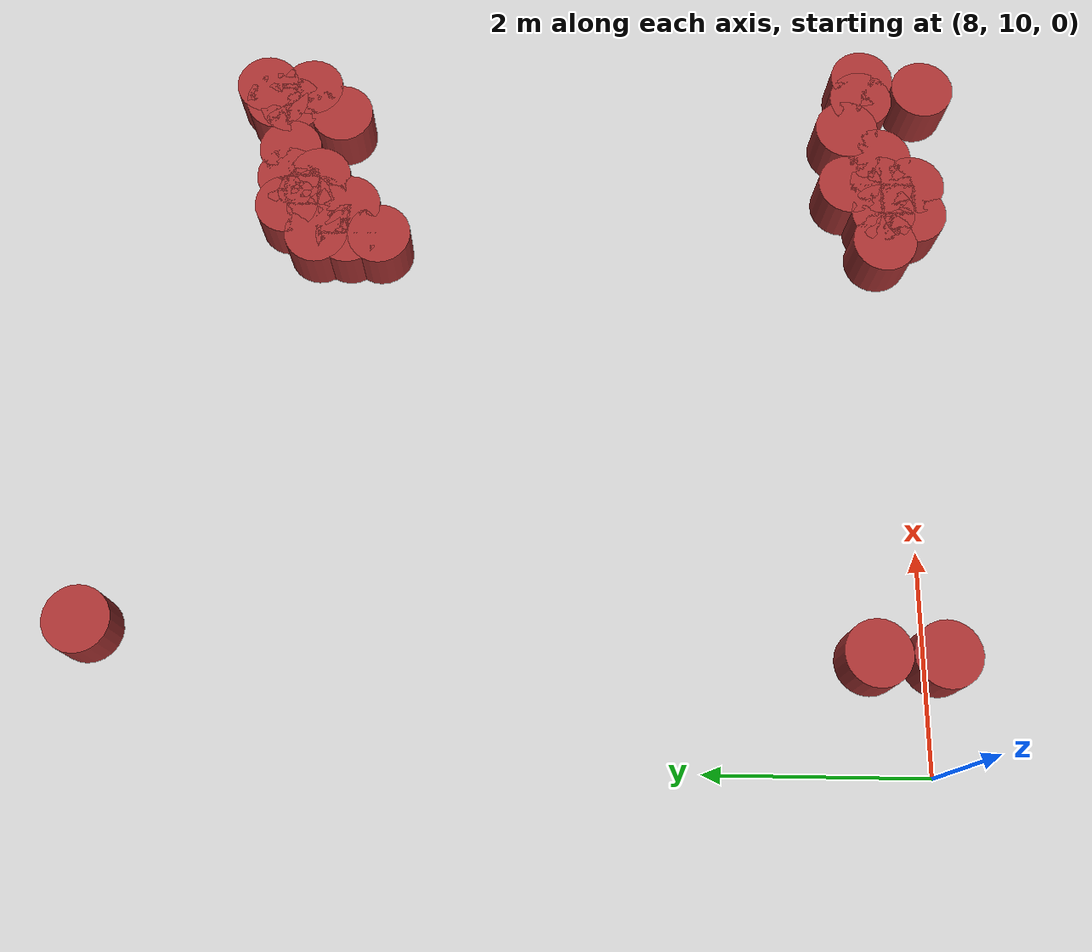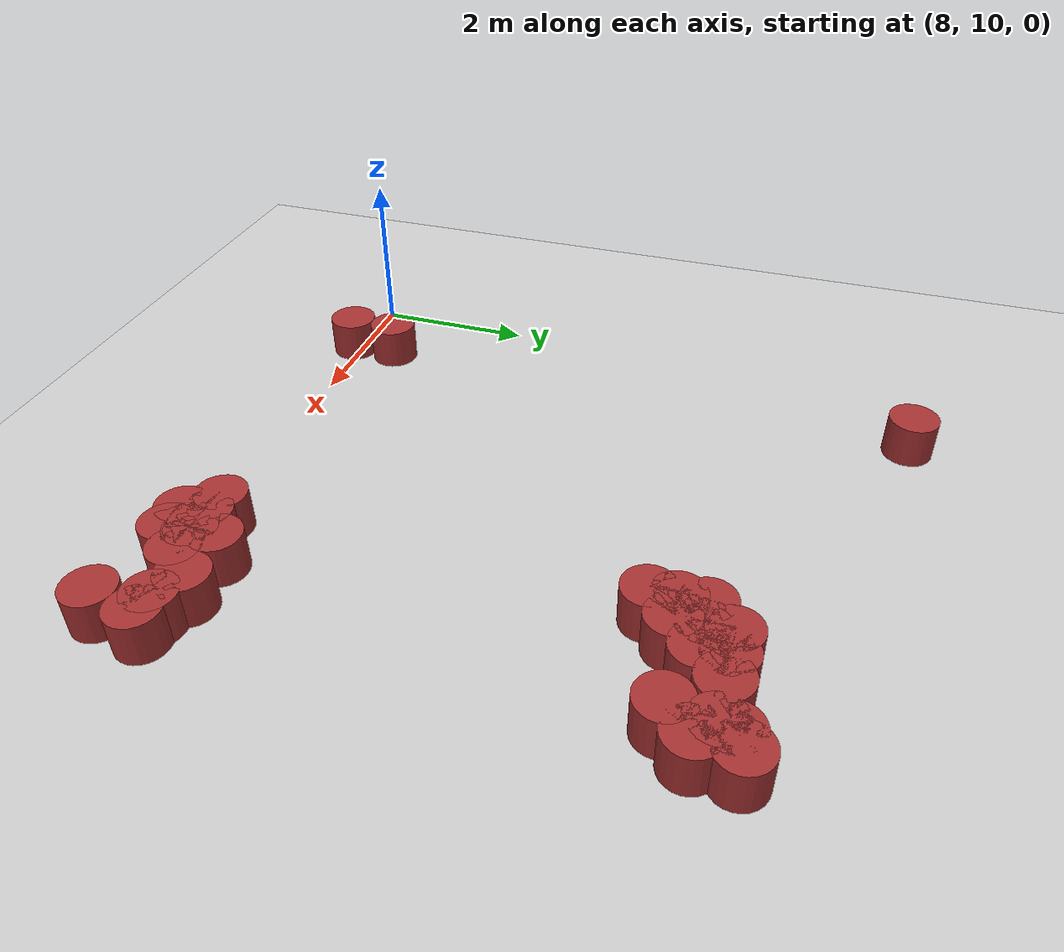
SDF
<sdf version="1.6">
 <world name="default">
  <model name="ground_plane">
   <static>1</static>
   <link name="link">
    <collision name="collision">
     <geometry><plane><normal>0 0 1</normal><size>100 100</size></plane></geometry>
     <surface><friction><ode><mu>100</mu><mu2>50</mu2></ode></friction></surface>
    </collision>
    <visual name="visual">
     <cast_shadows>0</cast_shadows>
     <geometry><plane><normal>0 0 1</normal><size>100 100</size></plane></geometry>
     <material>
      <script><uri>file://media/materials/scripts/gazebo.material</uri><name>Gazebo/Grey</name></script>
     </material>
    </visual>
   </link>
  </model>
  <model name="unit_cylinder_98">
   <static>1</static>
   <pose>9 9.9 0 0 -0 0</pose>
   <link name="link">
    <inertial>
     <mass>1</mass>
     <inertia><ixx>0.145833</ixx><ixy>0</ixy><ixz>0</ixz><iyy>0.145833</iyy><iyz>0</iyz><izz>0.125</izz></inertia>
    </inertial>
    <collision name="collision">
     <geometry><cylinder><radius>0.3</radius><length>1</length></cylinder></geometry>
    </collision>
    <visual name="visual">
     <geometry><cylinder><radius>0.3</radius><length>1</length></cylinder></geometry>
     <material><ambient>0.648 0.192 0.192 1</ambient><diffuse>0.648 0.192 0.192 1</diffuse></material>
     <material>
      <script><name>Gazebo/Grey</name><uri>file://media/materials/scripts/gazebo.material</uri></script>
     </material>
    </visual>
   </link>
  </model>
  <model name="unit_cylinder_99">
   <static>1</static>
   <pose>9 10.5 0 0 -0 0</pose>
   <link name="link">
    <inertial>
     <mass>1</mass>
     <inertia><ixx>0.145833</ixx><ixy>0</ixy><ixz>0</ixz><iyy>0.145833</iyy><iyz>0</iyz><izz>0.125</izz></inertia>
    </inertial>
    <collision name="collision">
     <geometry><cylinder><radius>0.3</radius><length>1</length></cylinder></geometry>
    </collision>
    <visual name="visual">
     <geometry><cylinder><radius>0.3</radius><length>1</length></cylinder></geometry>
     <material><ambient>0.648 0.192 0.192 1</ambient><diffuse>0.648 0.192 0.192 1</diffuse></material>
     <material>
      <script><name>Gazebo/Grey</name><uri>file://media/materials/scripts/gazebo.material</uri></script>
     </material>
    </visual>
   </link>
  </model>
  <model name="unit_cylinder_113">
   <static>1</static>
   <pose>9.17546 17.4355 0 0 -0 0</pose>
   <link name="link">
    <inertial>
     <mass>1</mass>
     <inertia><ixx>0.145833</ixx><ixy>0</ixy><ixz>0</ixz><iyy>0.145833</iyy><iyz>0</iyz><izz>0.125</izz></inertia>
    </inertial>
    <collision name="collision">
     <geometry><cylinder><radius>0.3</radius><length>1</length></cylinder></geometry>
    </collision>
    <visual name="visual">
     <geometry><cylinder><radius>0.3</radius><length>1</length></cylinder></geometry>
     <material><ambient>0.648 0.192 0.192 1</ambient><diffuse>0.648 0.192 0.192 1</diffuse></material>
     <material>
      <script><name>Gazebo/Grey</name><uri>file://media/materials/scripts/gazebo.material</uri></script>
     </material>
    </visual>
   </link>
  </model>
  <model name="unit_cylinder_128">
   <static>1</static>
   <pose>12.9 10.2 0 0 -0 0</pose>
   <link name="link">
    <inertial>
     <mass>1</mass>
     <inertia><ixx>0.145833</ixx><ixy>0</ixy><ixz>0</ixz><iyy>0.145833</iyy><iyz>0</iyz><izz>0.125</izz></inertia>
    </inertial>
    <collision name="collision">
     <geometry><cylinder><radius>0.3</radius><length>1</length></cylinder></geometry>
    </collision>
    <visual name="visual">
     <geometry><cylinder><radius>0.3</radius><length>1</length></cylinder></geometry>
     <material><ambient>0.648 0.192 0.192 1</ambient><diffuse>0.648 0.192 0.192 1</diffuse></material>
     <material>
      <script><name>Gazebo/Grey</name><uri>file://media/materials/scripts/gazebo.material</uri></script>
     </material>
    </visual>
   </link>
  </model>
  <model name="unit_cylinder_129">
   <static>1</static>
   <pose>12.9 15 0 0 -0 0</pose>
   <link name="link">
    <inertial>
     <mass>1</mass>
     <inertia><ixx>0.145833</ixx><ixy>0</ixy><ixz>0</ixz><iyy>0.145833</iyy><iyz>0</iyz><izz>0.125</izz></inertia>
    </inertial>
    <collision name="collision">
     <geometry><cylinder><radius>0.3</radius><length>1</length></cylinder></geometry>
    </collision>
    <visual name="visual">
     <geometry><cylinder><radius>0.3</radius><length>1</length></cylinder></geometry>
     <material><ambient>0.648 0.192 0.192 1</ambient><diffuse>0.648 0.192 0.192 1</diffuse></material>
     <material>
      <script><name>Gazebo/Grey</name><uri>file://media/materials/scripts/gazebo.material</uri></script>
     </material>
    </visual>
   </link>
  </model>
  <model name="unit_cylinder_130">
   <static>1</static>
   <pose>12.9 15.3 0 0 -0 0</pose>
   <link name="link">
    <inertial>
     <mass>1</mass>
     <inertia><ixx>0.145833</ixx><ixy>0</ixy><ixz>0</ixz><iyy>0.145833</iyy><iyz>0</iyz><izz>0.125</izz></inertia>
    </inertial>
    <collision name="collision">
     <geometry><cylinder><radius>0.3</radius><length>1</length></cylinder></geometry>
    </collision>
    <visual name="visual">
     <geometry><cylinder><radius>0.3</radius><length>1</length></cylinder></geometry>
     <material><ambient>0.648 0.192 0.192 1</ambient><diffuse>0.648 0.192 0.192 1</diffuse></material>
     <material>
      <script><name>Gazebo/Grey</name><uri>file://media/materials/scripts/gazebo.material</uri></script>
     </material>
    </visual>
   </link>
  </model>
  <model name="unit_cylinder_131">
   <static>1</static>
   <pose>12.9 15.6 0 0 -0 0</pose>
   <link name="link">
    <inertial>
     <mass>1</mass>
     <inertia><ixx>0.145833</ixx><ixy>0</ixy><ixz>0</ixz><iyy>0.145833</iyy><iyz>0</iyz><izz>0.125</izz></inertia>
    </inertial>
    <collision name="collision">
     <geometry><cylinder><radius>0.3</radius><length>1</length></cylinder></geometry>
    </collision>
    <visual name="visual">
     <geometry><cylinder><radius>0.3</radius><length>1</length></cylinder></geometry>
     <material><ambient>0.648 0.192 0.192 1</ambient><diffuse>0.648 0.192 0.192 1</diffuse></material>
     <material>
      <script><name>Gazebo/Grey</name><uri>file://media/materials/scripts/gazebo.material</uri></script>
     </material>
    </visual>
   </link>
  </model>
  <model name="unit_cylinder_132">
   <static>1</static>
   <pose>13.2 9.9 0 0 -0 0</pose>
   <link name="link">
    <inertial>
     <mass>1</mass>
     <inertia><ixx>0.145833</ixx><ixy>0</ixy><ixz>0</ixz><iyy>0.145833</iyy><iyz>0</iyz><izz>0.125</izz></inertia>
    </inertial>
    <collision name="collision">
     <geometry><cylinder><radius>0.3</radius><length>1</length></cylinder></geometry>
    </collision>
    <visual name="visual">
     <geometry><cylinder><radius>0.3</radius><length>1</length></cylinder></geometry>
     <material><ambient>0.648 0.192 0.192 1</ambient><diffuse>0.648 0.192 0.192 1</diffuse></material>
     <material>
      <script><name>Gazebo/Grey</name><uri>file://media/materials/scripts/gazebo.material</uri></script>
     </material>
    </visual>
   </link>
  </model>
  <model name="unit_cylinder_133">
   <static>1</static>
   <pose>13.2 10.2 0 0 -0 0</pose>
   <link name="link">
    <inertial>
     <mass>1</mass>
     <inertia><ixx>0.145833</ixx><ixy>0</ixy><ixz>0</ixz><iyy>0.145833</iyy><iyz>0</iyz><izz>0.125</izz></inertia>
    </inertial>
    <collision name="collision">
     <geometry><cylinder><radius>0.3</radius><length>1</length></cylinder></geometry>
    </collision>
    <visual name="visual">
     <geometry><cylinder><radius>0.3</radius><length>1</length></cylinder></geometry>
     <material><ambient>0.648 0.192 0.192 1</ambient><diffuse>0.648 0.192 0.192 1</diffuse></material>
     <material>
      <script><name>Gazebo/Grey</name><uri>file://media/materials/scripts/gazebo.material</uri></script>
     </material>
    </visual>
   </link>
  </model>
  <model name="unit_cylinder_134">
   <static>1</static>
   <pose>13.2 15.3 0 0 -0 0</pose>
   <link name="link">
    <inertial>
     <mass>1</mass>
     <inertia><ixx>0.145833</ixx><ixy>0</ixy><ixz>0</ixz><iyy>0.145833</iyy><iyz>0</iyz><izz>0.125</izz></inertia>
    </inertial>
    <collision name="collision">
     <geometry><cylinder><radius>0.3</radius><length>1</length></cylinder></geometry>
    </collision>
    <visual name="visual">
     <geometry><cylinder><radius>0.3</radius><length>1</length></cylinder></geometry>
     <material><ambient>0.648 0.192 0.192 1</ambient><diffuse>0.648 0.192 0.192 1</diffuse></material>
     <material>
      <script><name>Gazebo/Grey</name><uri>file://media/materials/scripts/gazebo.material</uri></script>
     </material>
    </visual>
   </link>
  </model>
  <model name="unit_cylinder_135">
   <static>1</static>
   <pose>13.2 15.6 0 0 -0 0</pose>
   <link name="link">
    <inertial>
     <mass>1</mass>
     <inertia><ixx>0.145833</ixx><ixy>0</ixy><ixz>0</ixz><iyy>0.145833</iyy><iyz>0</iyz><izz>0.125</izz></inertia>
    </inertial>
    <collision name="collision">
     <geometry><cylinder><radius>0.3</radius><length>1</length></cylinder></geometry>
    </collision>
    <visual name="visual">
     <geometry><cylinder><radius>0.3</radius><length>1</length></cylinder></geometry>
     <material><ambient>0.648 0.192 0.192 1</ambient><diffuse>0.648 0.192 0.192 1</diffuse></material>
     <material>
      <script><name>Gazebo/Grey</name><uri>file://media/materials/scripts/gazebo.material</uri></script>
     </material>
    </visual>
   </link>
  </model>
  <model name="unit_cylinder_136">
   <static>1</static>
   <pose>13.2 15.9 0 0 -0 0</pose>
   <link name="link">
    <inertial>
     <mass>1</mass>
     <inertia><ixx>0.145833</ixx><ixy>0</ixy><ixz>0</ixz><iyy>0.145833</iyy><iyz>0</iyz><izz>0.125</izz></inertia>
    </inertial>
    <collision name="collision">
     <geometry><cylinder><radius>0.3</radius><length>1</length></cylinder></geometry>
    </collision>
    <visual name="visual">
     <geometry><cylinder><radius>0.3</radius><length>1</length></cylinder></geometry>
     <material><ambient>0.648 0.192 0.192 1</ambient><diffuse>0.648 0.192 0.192 1</diffuse></material>
     <material>
      <script><name>Gazebo/Grey</name><uri>file://media/materials/scripts/gazebo.material</uri></script>
     </material>
    </visual>
   </link>
  </model>
  <model name="unit_cylinder_137">
   <static>1</static>
   <pose>13.5 9.9 0 0 -0 0</pose>
   <link name="link">
    <inertial>
     <mass>1</mass>
     <inertia><ixx>0.145833</ixx><ixy>0</ixy><ixz>0</ixz><iyy>0.145833</iyy><iyz>0</iyz><izz>0.125</izz></inertia>
    </inertial>
    <collision name="collision">
     <geometry><cylinder><radius>0.3</radius><length>1</length></cylinder></geometry>
    </collision>
    <visual name="visual">
     <geometry><cylinder><radius>0.3</radius><length>1</length></cylinder></geometry>
     <material><ambient>0.648 0.192 0.192 1</ambient><diffuse>0.648 0.192 0.192 1</diffuse></material>
     <material>
      <script><name>Gazebo/Grey</name><uri>file://media/materials/scripts/gazebo.material</uri></script>
     </material>
    </visual>
   </link>
  </model>
  <model name="unit_cylinder_138">
   <static>1</static>
   <pose>13.5 10.2 0 0 -0 0</pose>
   <link name="link">
    <inertial>
     <mass>1</mass>
     <inertia><ixx>0.145833</ixx><ixy>0</ixy><ixz>0</ixz><iyy>0.145833</iyy><iyz>0</iyz><izz>0.125</izz></inertia>
    </inertial>
    <collision name="collision">
     <geometry><cylinder><radius>0.3</radius><length>1</length></cylinder></geometry>
    </collision>
    <visual name="visual">
     <geometry><cylinder><radius>0.3</radius><length>1</length></cylinder></geometry>
     <material><ambient>0.648 0.192 0.192 1</ambient><diffuse>0.648 0.192 0.192 1</diffuse></material>
     <material>
      <script><name>Gazebo/Grey</name><uri>file://media/materials/scripts/gazebo.material</uri></script>
     </material>
    </visual>
   </link>
  </model>
  <model name="unit_cylinder_139">
   <static>1</static>
   <pose>13.5 10.5 0 0 -0 0</pose>
   <link name="link">
    <inertial>
     <mass>1</mass>
     <inertia><ixx>0.145833</ixx><ixy>0</ixy><ixz>0</ixz><iyy>0.145833</iyy><iyz>0</iyz><izz>0.125</izz></inertia>
    </inertial>
    <collision name="collision">
     <geometry><cylinder><radius>0.3</radius><length>1</length></cylinder></geometry>
    </collision>
    <visual name="visual">
     <geometry><cylinder><radius>0.3</radius><length>1</length></cylinder></geometry>
     <material><ambient>0.648 0.192 0.192 1</ambient><diffuse>0.648 0.192 0.192 1</diffuse></material>
     <material>
      <script><name>Gazebo/Grey</name><uri>file://media/materials/scripts/gazebo.material</uri></script>
     </material>
    </visual>
   </link>
  </model>
  <model name="unit_cylinder_140">
   <static>1</static>
   <pose>13.5 15.6 0 0 -0 0</pose>
   <link name="link">
    <inertial>
     <mass>1</mass>
     <inertia><ixx>0.145833</ixx><ixy>0</ixy><ixz>0</ixz><iyy>0.145833</iyy><iyz>0</iyz><izz>0.125</izz></inertia>
    </inertial>
    <collision name="collision">
     <geometry><cylinder><radius>0.3</radius><length>1</length></cylinder></geometry>
    </collision>
    <visual name="visual">
     <geometry><cylinder><radius>0.3</radius><length>1</length></cylinder></geometry>
     <material><ambient>0.648 0.192 0.192 1</ambient><diffuse>0.648 0.192 0.192 1</diffuse></material>
     <material>
      <script><name>Gazebo/Grey</name><uri>file://media/materials/scripts/gazebo.material</uri></script>
     </material>
    </visual>
   </link>
  </model>
  <model name="unit_cylinder_141">
   <static>1</static>
   <pose>13.5 15.9 0 0 -0 0</pose>
   <link name="link">
    <inertial>
     <mass>1</mass>
     <inertia><ixx>0.145833</ixx><ixy>0</ixy><ixz>0</ixz><iyy>0.145833</iyy><iyz>0</iyz><izz>0.125</izz></inertia>
    </inertial>
    <collision name="collision">
     <geometry><cylinder><radius>0.3</radius><length>1</length></cylinder></geometry>
    </collision>
    <visual name="visual">
     <geometry><cylinder><radius>0.3</radius><length>1</length></cylinder></geometry>
     <material><ambient>0.648 0.192 0.192 1</ambient><diffuse>0.648 0.192 0.192 1</diffuse></material>
     <material>
      <script><name>Gazebo/Grey</name><uri>file://media/materials/scripts/gazebo.material</uri></script>
     </material>
    </visual>
   </link>
  </model>
  <model name="unit_cylinder_143">
   <static>1</static>
   <pose>13.8 10.2 0 0 -0 0</pose>
   <link name="link">
    <inertial>
     <mass>1</mass>
     <inertia><ixx>0.145833</ixx><ixy>0</ixy><ixz>0</ixz><iyy>0.145833</iyy><iyz>0</iyz><izz>0.125</izz></inertia>
    </inertial>
    <collision name="collision">
     <geometry><cylinder><radius>0.3</radius><length>1</length></cylinder></geometry>
    </collision>
    <visual name="visual">
     <geometry><cylinder><radius>0.3</radius><length>1</length></cylinder></geometry>
     <material><ambient>0.648 0.192 0.192 1</ambient><diffuse>0.648 0.192 0.192 1</diffuse></material>
     <material>
      <script><name>Gazebo/Grey</name><uri>file://media/materials/scripts/gazebo.material</uri></script>
     </material>
    </visual>
   </link>
  </model>
  <model name="unit_cylinder_144">
   <static>1</static>
   <pose>13.8 15.9 0 0 -0 0</pose>
   <link name="link">
    <inertial>
     <mass>1</mass>
     <inertia><ixx>0.145833</ixx><ixy>0</ixy><ixz>0</ixz><iyy>0.145833</iyy><iyz>0</iyz><izz>0.125</izz></inertia>
    </inertial>
    <collision name="collision">
     <geometry><cylinder><radius>0.3</radius><length>1</length></cylinder></geometry>
    </collision>
    <visual name="visual">
     <geometry><cylinder><radius>0.3</radius><length>1</length></cylinder></geometry>
     <material><ambient>0.648 0.192 0.192 1</ambient><diffuse>0.648 0.192 0.192 1</diffuse></material>
     <material>
      <script><name>Gazebo/Grey</name><uri>file://media/materials/scripts/gazebo.material</uri></script>
     </material>
    </visual>
   </link>
  </model>
  <model name="unit_cylinder_147">
   <static>1</static>
   <pose>14.1 10.5 0 0 -0 0</pose>
   <link name="link">
    <inertial>
     <mass>1</mass>
     <inertia><ixx>0.145833</ixx><ixy>0</ixy><ixz>0</ixz><iyy>0.145833</iyy><iyz>0</iyz><izz>0.125</izz></inertia>
    </inertial>
    <collision name="collision">
     <geometry><cylinder><radius>0.3</radius><length>1</length></cylinder></geometry>
    </collision>
    <visual name="visual">
     <geometry><cylinder><radius>0.3</radius><length>1</length></cylinder></geometry>
     <material><ambient>0.648 0.192 0.192 1</ambient><diffuse>0.648 0.192 0.192 1</diffuse></material>
     <material>
      <script><name>Gazebo/Grey</name><uri>file://media/materials/scripts/gazebo.material</uri></script>
     </material>
    </visual>
   </link>
  </model>
  <model name="unit_cylinder_168">
   <static>1</static>
   <pose>14.5047 16.1725 0 0 -0 0</pose>
   <link name="link">
    <inertial>
     <mass>1</mass>
     <inertia><ixx>0.145833</ixx><ixy>0</ixy><ixz>0</ixz><iyy>0.145833</iyy><iyz>0</iyz><izz>0.125</izz></inertia>
    </inertial>
    <collision name="collision">
     <geometry><cylinder><radius>0.3</radius><length>1</length></cylinder></geometry>
    </collision>
    <visual name="visual">
     <geometry><cylinder><radius>0.3</radius><length>1</length></cylinder></geometry>
     <material><ambient>0.648 0.192 0.192 1</ambient><diffuse>0.648 0.192 0.192 1</diffuse></material>
     <material>
      <script><name>Gazebo/Grey</name><uri>file://media/materials/scripts/gazebo.material</uri></script>
     </material>
    </visual>
   </link>
  </model>
  <model name="unit_cylinder_185">
   <static>1</static>
   <pose>14.1914 15.4233 0 0 -0 0</pose>
   <link name="link">
    <inertial>
     <mass>1</mass>
     <inertia><ixx>0.145833</ixx><ixy>0</ixy><ixz>0</ixz><iyy>0.145833</iyy><iyz>0</iyz><izz>0.125</izz></inertia>
    </inertial>
    <collision name="collision">
     <geometry><cylinder><radius>0.3</radius><length>1</length></cylinder></geometry>
    </collision>
    <visual name="visual">
     <geometry><cylinder><radius>0.3</radius><length>1</length></cylinder></geometry>
     <material><ambient>0.648 0.192 0.192 1</ambient><diffuse>0.648 0.192 0.192 1</diffuse></material>
     <material>
      <script><name>Gazebo/Grey</name><uri>file://media/materials/scripts/gazebo.material</uri></script>
     </material>
    </visual>
   </link>
  </model>
  <model name="unit_cylinder_221">
   <static>1</static>
   <pose>14.3266 16.0651 0 0 -0 0</pose>
   <link name="link">
    <inertial>
     <mass>1</mass>
     <inertia><ixx>0.145833</ixx><ixy>0</ixy><ixz>0</ixz><iyy>0.145833</iyy><iyz>0</iyz><izz>0.125</izz></inertia>
    </inertial>
    <collision name="collision">
     <geometry><cylinder><radius>0.3</radius><length>1</length></cylinder></geometry>
    </collision>
    <visual name="visual">
     <geometry><cylinder><radius>0.3</radius><length>1</length></cylinder></geometry>
     <material><ambient>0.648 0.192 0.192 1</ambient><diffuse>0.648 0.192 0.192 1</diffuse></material>
     <material>
      <script><name>Gazebo/Grey</name><uri>file://media/materials/scripts/gazebo.material</uri></script>
     </material>
    </visual>
   </link>
  </model>
  <model name="unit_cylinder_222">
   <static>1</static>
   <pose>14.2841 15.9262 0 0 -0 0</pose>
   <link name="link">
    <inertial>
     <mass>1</mass>
     <inertia><ixx>0.145833</ixx><ixy>0</ixy><ixz>0</ixz><iyy>0.145833</iyy><iyz>0</iyz><izz>0.125</izz></inertia>
    </inertial>
    <collision name="collision">
     <geometry><cylinder><radius>0.3</radius><length>1</length></cylinder></geometry>
    </collision>
    <visual name="visual">
     <geometry><cylinder><radius>0.3</radius><length>1</length></cylinder></geometry>
     <material><ambient>0.648 0.192 0.192 1</ambient><diffuse>0.648 0.192 0.192 1</diffuse></material>
     <material>
      <script><name>Gazebo/Grey</name><uri>file://media/materials/scripts/gazebo.material</uri></script>
     </material>
    </visual>
   </link>
  </model>
  <model name="unit_cylinder_223">
   <static>1</static>
   <pose>14.4764 15.7299 0 0 -0 0</pose>
   <link name="link">
    <inertial>
     <mass>1</mass>
     <inertia><ixx>0.145833</ixx><ixy>0</ixy><ixz>0</ixz><iyy>0.145833</iyy><iyz>0</iyz><izz>0.125</izz></inertia>
    </inertial>
    <collision name="collision">
     <geometry><cylinder><radius>0.3</radius><length>1</length></cylinder></geometry>
    </collision>
    <visual name="visual">
     <geometry><cylinder><radius>0.3</radius><length>1</length></cylinder></geometry>
     <material><ambient>0.648 0.192 0.192 1</ambient><diffuse>0.648 0.192 0.192 1</diffuse></material>
     <material>
      <script><name>Gazebo/Grey</name><uri>file://media/materials/scripts/gazebo.material</uri></script>
     </material>
    </visual>
   </link>
  </model>
  <model name="unit_cylinder_266">
   <static>1</static>
   <pose>14.4304 10.3456 0 0 -0 0</pose>
   <link name="link">
    <inertial>
     <mass>1</mass>
     <inertia><ixx>0.145833</ixx><ixy>0</ixy><ixz>0</ixz><iyy>0.145833</iyy><iyz>0</iyz><izz>0.125</izz></inertia>
    </inertial>
    <collision name="collision">
     <geometry><cylinder><radius>0.3</radius><length>1</length></cylinder></geometry>
    </collision>
    <visual name="visual">
     <geometry><cylinder><radius>0.3</radius><length>1</length></cylinder></geometry>
     <material><ambient>0.648 0.192 0.192 1</ambient><diffuse>0.648 0.192 0.192 1</diffuse></material>
     <material>
      <script><name>Gazebo/Grey</name><uri>file://media/materials/scripts/gazebo.material</uri></script>
     </material>
    </visual>
   </link>
  </model>
  <model name="unit_cylinder_304">
   <static>1</static>
   <pose>14.6626 10.3215 0 0 -0 0</pose>
   <link name="link">
    <inertial>
     <mass>1</mass>
     <inertia><ixx>0.145833</ixx><ixy>0</ixy><ixz>0</ixz><iyy>0.145833</iyy><iyz>0</iyz><izz>0.125</izz></inertia>
    </inertial>
    <collision name="collision">
     <geometry><cylinder><radius>0.3</radius><length>1</length></cylinder></geometry>
    </collision>
    <visual name="visual">
     <geometry><cylinder><radius>0.3</radius><length>1</length></cylinder></geometry>
     <material><ambient>0.648 0.192 0.192 1</ambient><diffuse>0.648 0.192 0.192 1</diffuse></material>
     <material>
      <script><name>Gazebo/Grey</name><uri>file://media/materials/scripts/gazebo.material</uri></script>
     </material>
    </visual>
   </link>
  </model>
  <model name="unit_cylinder_344">
   <static>1</static>
   <pose>14.556 9.73444 0 0 -0 0</pose>
   <link name="link">
    <inertial>
     <mass>1</mass>
     <inertia><ixx>0.145833</ixx><ixy>0</ixy><ixz>0</ixz><iyy>0.145833</iyy><iyz>0</iyz><izz>0.125</izz></inertia>
    </inertial>
    <collision name="collision">
     <geometry><cylinder><radius>0.3</radius><length>1</length></cylinder></geometry>
    </collision>
    <visual name="visual">
     <geometry><cylinder><radius>0.3</radius><length>1</length></cylinder></geometry>
     <material><ambient>0.648 0.192 0.192 1</ambient><diffuse>0.648 0.192 0.192 1</diffuse></material>
     <material>
      <script><name>Gazebo/Grey</name><uri>file://media/materials/scripts/gazebo.material</uri></script>
     </material>
    </visual>
   </link>
  </model>
 </world>
</sdf>
